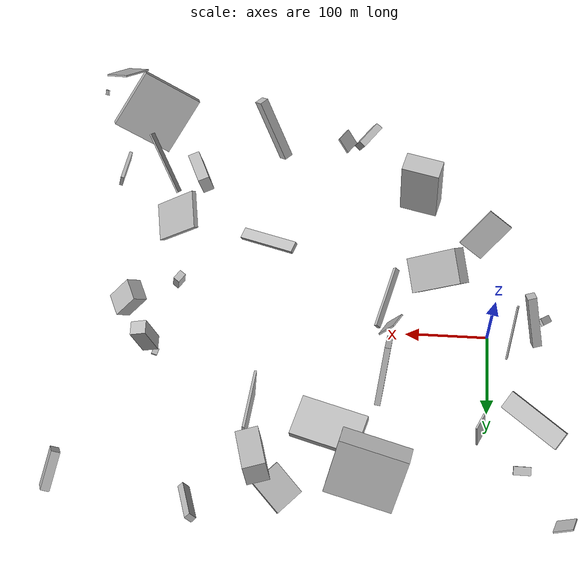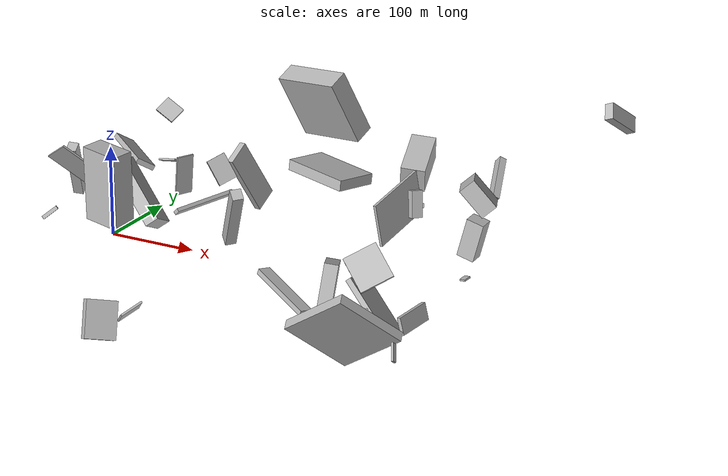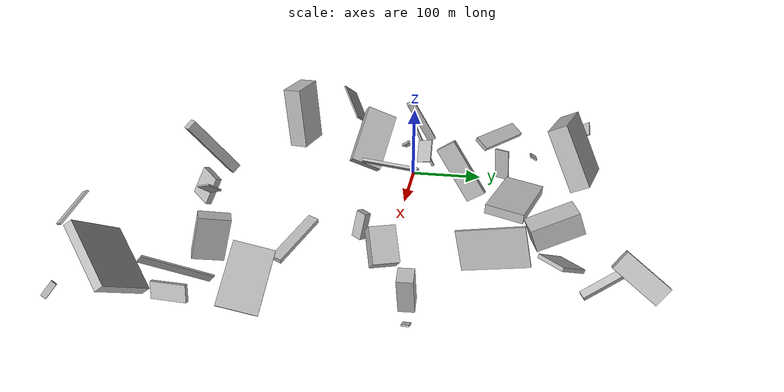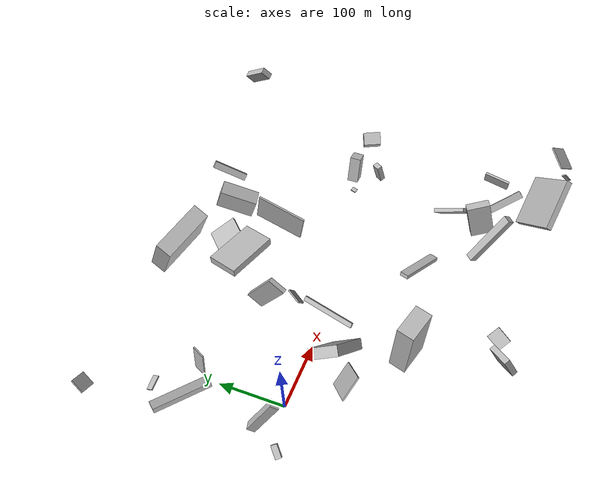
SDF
<sdf version="1.6">
 <world name="default">
  <scene>
   <sky><clouds><speed>12</speed></clouds></sky>
   <ambient>0.4 0.4 0.4 1</ambient>
   <background>0.7 0.7 0.7 1</background>
   <shadows>1</shadows>
  </scene>
  <gravity>0 0 -9.8066</gravity>
  <magnetic_field>6e-06 2.3e-05 -4.2e-05</magnetic_field>
  <physics default="0" name="default_physics" type="ode">
   <ode>
    <solver>
     <type>quick</type>
     <iters>10</iters>
     <sor>1.0</sor>
     <use_dynamic_moi_rescaling>0</use_dynamic_moi_rescaling>
    </solver>
    <constraints>
     <cfm>0</cfm>
     <erp>0.2</erp>
     <contact_max_correcting_vel>100</contact_max_correcting_vel>
     <contact_surface_layer>0.001</contact_surface_layer>
    </constraints>
   </ode>
   <max_step_size>0.004</max_step_size>
   <real_time_factor>1</real_time_factor>
   <real_time_update_rate>250</real_time_update_rate>
  </physics>
  <light name="sun" type="directional">
   <pose>0 0 10 0 0 0</pose>
   <diffuse>0.8 0.8 0.8 1</diffuse>
   <specular>0.2 0.2 0.2 1</specular>
   <attenuation>
    <range>1000</range>
    <constant>0.9</constant>
    <linear>0.01</linear>
    <quadratic>0.001</quadratic>
   </attenuation>
   <direction>-0.5 0.1 -0.9</direction>
  </light>
  <model name="building_1">
   <static>0</static>
   <pose>279.9965545909261 126.73202018139688 38.76321665959526 1.5321752018150498 -0.20810318214324763 1.4685759104585947</pose>
   <link name="link">
    <gravity>0</gravity>
    <pose>0 0 1.5 0 0 0</pose>
    <collision name="collision"><geometry><box><size>80 50 3</size></box></geometry></collision>
    <visual name="visual">
     <cast_shadows>0</cast_shadows>
     <geometry><box><size>80 50 3</size></box></geometry>
     <material>
      <script>
       <uri>model://HANNAS_wall/materials/scripts</uri>
       <uri>model://HANNAS_wall/materials/textures</uri>
       <name>vrc/HANNAS_wall</name>
      </script>
     </material>
    </visual>
   </link>
  </model>
  <model name="building_2">
   <static>0</static>
   <pose>93.61058459460833 -56.7361167412526 48.61423488849728 0.512007886250413 0.5815912216819143 -2.6064992408569356</pose>
   <link name="link">
    <gravity>0</gravity>
    <pose>0 0 40.0 0 0 0</pose>
    <collision name="collision"><geometry><box><size>15 42 80</size></box></geometry></collision>
    <visual name="visual">
     <cast_shadows>0</cast_shadows>
     <geometry><box><size>15 42 80</size></box></geometry>
     <material>
      <script>
       <uri>model://HANNAS_wall/materials/scripts</uri>
       <uri>model://HANNAS_wall/materials/textures</uri>
       <name>vrc/HANNAS_wall</name>
      </script>
     </material>
    </visual>
   </link>
  </model>
  <model name="building_3">
   <static>0</static>
   <pose>186.26479422411356 148.0589014043138 51.18227775472146 0.05181325330847027 0.07745645125323446 1.2743704321075382</pose>
   <link name="link">
    <gravity>0</gravity>
    <pose>0 0 6.0 0 0 0</pose>
    <collision name="collision"><geometry><box><size>48 80 12</size></box></geometry></collision>
    <visual name="visual">
     <cast_shadows>0</cast_shadows>
     <geometry><box><size>48 80 12</size></box></geometry>
     <material>
      <script>
       <uri>model://HANNAS_wall/materials/scripts</uri>
       <uri>model://HANNAS_wall/materials/textures</uri>
       <name>vrc/HANNAS_wall</name>
      </script>
     </material>
    </visual>
   </link>
  </model>
  <model name="building_4">
   <static>0</static>
   <pose>443.6855823263559 -278.1529136825402 136.59775008841018 0.9474559834551466 0.7805089044271074 1.8207618489288693</pose>
   <link name="link">
    <gravity>0</gravity>
    <pose>0 0 17.0 0 0 0</pose>
    <collision name="collision"><geometry><box><size>2 39 34</size></box></geometry></collision>
    <visual name="visual">
     <cast_shadows>0</cast_shadows>
     <geometry><box><size>2 39 34</size></box></geometry>
     <material>
      <script>
       <uri>model://HANNAS_wall/materials/scripts</uri>
       <uri>model://HANNAS_wall/materials/textures</uri>
       <name>vrc/HANNAS_wall</name>
      </script>
     </material>
    </visual>
   </link>
  </model>
  <model name="building_5">
   <static>0</static>
   <pose>-53.71746451042978 3.189412258950057 66.52480452832444 -1.7220571112228384 -1.0540468319826466 -1.1713802138509006</pose>
   <link name="link">
    <gravity>0</gravity>
    <pose>0 0 5.5 0 0 0</pose>
    <collision name="collision"><geometry><box><size>71 12 11</size></box></geometry></collision>
    <visual name="visual">
     <cast_shadows>0</cast_shadows>
     <geometry><box><size>71 12 11</size></box></geometry>
     <material>
      <script>
       <uri>model://HANNAS_wall/materials/scripts</uri>
       <uri>model://HANNAS_wall/materials/textures</uri>
       <name>vrc/HANNAS_wall</name>
      </script>
     </material>
    </visual>
   </link>
  </model>
  <model name="building_6">
   <static>0</static>
   <pose>402.2510653294307 44.72366829267591 9.770083499966987 0.13464949872219803 0.1503943121939559 -1.787754455920048</pose>
   <link name="link">
    <gravity>0</gravity>
    <pose>0 0 1.0 0 0 0</pose>
    <collision name="collision"><geometry><box><size>9 7 2</size></box></geometry></collision>
    <visual name="visual">
     <cast_shadows>0</cast_shadows>
     <geometry><box><size>9 7 2</size></box></geometry>
     <material>
      <script>
       <uri>model://HANNAS_wall/materials/scripts</uri>
       <uri>model://HANNAS_wall/materials/textures</uri>
       <name>vrc/HANNAS_wall</name>
      </script>
     </material>
    </visual>
   </link>
  </model>
  <model name="building_7">
   <static>0</static>
   <pose>454.08228412197656 -200.56257330067257 59.396637947524184 -1.191708869667795 1.354877417257151 0.2135165306851047</pose>
   <link name="link">
    <gravity>0</gravity>
    <pose>0 0 20.0 0 0 0</pose>
    <collision name="collision"><geometry><box><size>18 4 40</size></box></geometry></collision>
    <visual name="visual">
     <cast_shadows>0</cast_shadows>
     <geometry><box><size>18 4 40</size></box></geometry>
     <material>
      <script>
       <uri>model://HANNAS_wall/materials/scripts</uri>
       <uri>model://HANNAS_wall/materials/textures</uri>
       <name>vrc/HANNAS_wall</name>
      </script>
     </material>
    </visual>
   </link>
  </model>
  <model name="building_8">
   <static>0</static>
   <pose>124.96068337537739 67.42685827261576 56.256942372477866 -0.9842765875807007 -0.026073651422758085 -0.14525929873542798</pose>
   <link name="link">
    <gravity>0</gravity>
    <pose>0 0 13.5 0 0 0</pose>
    <collision name="collision"><geometry><box><size>7 80 27</size></box></geometry></collision>
    <visual name="visual">
     <cast_shadows>0</cast_shadows>
     <geometry><box><size>7 80 27</size></box></geometry>
     <material>
      <script>
       <uri>model://HANNAS_wall/materials/scripts</uri>
       <uri>model://HANNAS_wall/materials/textures</uri>
       <name>vrc/HANNAS_wall</name>
      </script>
     </material>
    </visual>
   </link>
  </model>
  <model name="building_9">
   <static>0</static>
   <pose>373.5326760712983 -9.279932538343441 105.30313980368851 -2.7279299987462227 -1.3470425803983885 2.127038603220841</pose>
   <link name="link">
    <gravity>0</gravity>
    <pose>0 0 4.0 0 0 0</pose>
    <collision name="collision"><geometry><box><size>28 12 8</size></box></geometry></collision>
    <visual name="visual">
     <cast_shadows>0</cast_shadows>
     <geometry><box><size>28 12 8</size></box></geometry>
     <material>
      <script>
       <uri>model://HANNAS_wall/materials/scripts</uri>
       <uri>model://HANNAS_wall/materials/textures</uri>
       <name>vrc/HANNAS_wall</name>
      </script>
     </material>
    </visual>
   </link>
  </model>
  <model name="building_10">
   <static>0</static>
   <pose>419.4109605552414 45.75241809012269 54.48975967565239 0.10436281535261606 -1.2978513568434706 -0.07442136768969607</pose>
   <link name="link">
    <gravity>0</gravity>
    <pose>0 0 9.5 0 0 0</pose>
    <collision name="collision"><geometry><box><size>43 17 19</size></box></geometry></collision>
    <visual name="visual">
     <cast_shadows>0</cast_shadows>
     <geometry><box><size>43 17 19</size></box></geometry>
     <material>
      <script>
       <uri>model://HANNAS_wall/materials/scripts</uri>
       <uri>model://HANNAS_wall/materials/textures</uri>
       <name>vrc/HANNAS_wall</name>
      </script>
     </material>
    </visual>
   </link>
  </model>
  <model name="building_11">
   <static>0</static>
   <pose>68.88288646436001 -136.95822552779202 119.63677328357181 1.6148628858684564 -0.061804922897520306 1.311763629929197</pose>
   <link name="link">
    <gravity>0</gravity>
    <pose>0 0 22.5 0 0 0</pose>
    <collision name="collision"><geometry><box><size>24 80 45</size></box></geometry></collision>
    <visual name="visual">
     <cast_shadows>0</cast_shadows>
     <geometry><box><size>24 80 45</size></box></geometry>
     <material>
      <script>
       <uri>model://HANNAS_wall/materials/scripts</uri>
       <uri>model://HANNAS_wall/materials/textures</uri>
       <name>vrc/HANNAS_wall</name>
      </script>
     </material>
    </visual>
   </link>
  </model>
  <model name="building_12">
   <static>0</static>
   <pose>491.0341855352604 -282.36747962850853 71.26693123988247 -0.47188309948223783 -0.8598849415063372 2.062187277139318</pose>
   <link name="link">
    <gravity>0</gravity>
    <pose>0 0 3.0 0 0 0</pose>
    <collision name="collision"><geometry><box><size>18 2 6</size></box></geometry></collision>
    <visual name="visual">
     <cast_shadows>0</cast_shadows>
     <geometry><box><size>18 2 6</size></box></geometry>
     <material>
      <script>
       <uri>model://HANNAS_wall/materials/scripts</uri>
       <uri>model://HANNAS_wall/materials/textures</uri>
       <name>vrc/HANNAS_wall</name>
      </script>
     </material>
    </visual>
   </link>
  </model>
  <model name="building_13">
   <static>0</static>
   <pose>390.9009227943308 -164.96513085420622 36.60827294319318 0.7638537239144003 -0.817591601877111 1.2045286012615166</pose>
   <link name="link">
    <gravity>0</gravity>
    <pose>0 0 40.0 0 0 0</pose>
    <collision name="collision"><geometry><box><size>12 2 80</size></box></geometry></collision>
    <visual name="visual">
     <cast_shadows>0</cast_shadows>
     <geometry><box><size>12 2 80</size></box></geometry>
     <material>
      <script>
       <uri>model://HANNAS_wall/materials/scripts</uri>
       <uri>model://HANNAS_wall/materials/textures</uri>
       <name>vrc/HANNAS_wall</name>
      </script>
     </material>
    </visual>
   </link>
  </model>
  <model name="building_14">
   <static>0</static>
   <pose>436.6933379562506 28.034990045200637 99.36363914801026 0.7051737758362245 -0.039598995915817614 -1.168949500733004</pose>
   <link name="link">
    <gravity>0</gravity>
    <pose>0 0 18.0 0 0 0</pose>
    <collision name="collision"><geometry><box><size>26 19 36</size></box></geometry></collision>
    <visual name="visual">
     <cast_shadows>0</cast_shadows>
     <geometry><box><size>26 19 36</size></box></geometry>
     <material>
      <script>
       <uri>model://HANNAS_wall/materials/scripts</uri>
       <uri>model://HANNAS_wall/materials/textures</uri>
       <name>vrc/HANNAS_wall</name>
      </script>
     </material>
    </visual>
   </link>
  </model>
  <model name="building_15">
   <static>0</static>
   <pose>127.08832946732282 -16.550651143856452 63.86607322262183 -0.0018465878911678136 -0.812965451798321 -0.25560962270918614</pose>
   <link name="link">
    <gravity>0</gravity>
    <pose>0 0 2.0 0 0 0</pose>
    <collision name="collision"><geometry><box><size>7 80 4</size></box></geometry></collision>
    <visual name="visual">
     <cast_shadows>0</cast_shadows>
     <geometry><box><size>7 80 4</size></box></geometry>
     <material>
      <script>
       <uri>model://HANNAS_wall/materials/scripts</uri>
       <uri>model://HANNAS_wall/materials/textures</uri>
       <name>vrc/HANNAS_wall</name>
      </script>
     </material>
    </visual>
   </link>
  </model>
  <model name="building_16">
   <static>0</static>
   <pose>391.15193919587904 -127.72223989500003 41.42521735017289 2.2694257723757385 -0.2668732989803122 -1.4377535380249924</pose>
   <link name="link">
    <gravity>0</gravity>
    <pose>0 0 3.0 0 0 0</pose>
    <collision name="collision"><geometry><box><size>46 71 6</size></box></geometry></collision>
    <visual name="visual">
     <cast_shadows>0</cast_shadows>
     <geometry><box><size>46 71 6</size></box></geometry>
     <material>
      <script>
       <uri>model://HANNAS_wall/materials/scripts</uri>
       <uri>model://HANNAS_wall/materials/textures</uri>
       <name>vrc/HANNAS_wall</name>
      </script>
     </material>
    </visual>
   </link>
  </model>
  <model name="building_17">
   <static>0</static>
   <pose>255.94511960830388 -182.53683003113113 104.84841553049048 0.08281668133374835 0.6367830451465198 -0.7278767702187471</pose>
   <link name="link">
    <gravity>0</gravity>
    <pose>0 0 40.0 0 0 0</pose>
    <collision name="collision"><geometry><box><size>12 11 80</size></box></geometry></collision>
    <visual name="visual">
     <cast_shadows>0</cast_shadows>
     <geometry><box><size>12 11 80</size></box></geometry>
     <material>
      <script>
       <uri>model://HANNAS_wall/materials/scripts</uri>
       <uri>model://HANNAS_wall/materials/textures</uri>
       <name>vrc/HANNAS_wall</name>
      </script>
     </material>
    </visual>
   </link>
  </model>
  <model name="building_18">
   <static>0</static>
   <pose>10.977521816427478 130.77821261139036 27.966545588820296 -0.0028952603326046237 -1.460231644887205 -0.4490563015666765</pose>
   <link name="link">
    <gravity>0</gravity>
    <pose>0 0 1.0 0 0 0</pose>
    <collision name="collision"><geometry><box><size>46 21 2</size></box></geometry></collision>
    <visual name="visual">
     <cast_shadows>0</cast_shadows>
     <geometry><box><size>46 21 2</size></box></geometry>
     <material>
      <script>
       <uri>model://HANNAS_wall/materials/scripts</uri>
       <uri>model://HANNAS_wall/materials/textures</uri>
       <name>vrc/HANNAS_wall</name>
      </script>
     </material>
    </visual>
   </link>
  </model>
  <model name="building_19">
   <static>0</static>
   <pose>-85.65427045189716 242.96729056591244 47.781922080766094 0.763025589973828 0.7635207993995523 2.1569425486426796</pose>
   <link name="link">
    <gravity>0</gravity>
    <pose>0 0 10.5 0 0 0</pose>
    <collision name="collision"><geometry><box><size>2 24 21</size></box></geometry></collision>
    <visual name="visual">
     <cast_shadows>0</cast_shadows>
     <geometry><box><size>2 24 21</size></box></geometry>
     <material>
      <script>
       <uri>model://HANNAS_wall/materials/scripts</uri>
       <uri>model://HANNAS_wall/materials/textures</uri>
       <name>vrc/HANNAS_wall</name>
      </script>
     </material>
    </visual>
   </link>
  </model>
  <model name="building_20">
   <static>0</static>
   <pose>-69.89709816651416 -18.974588899084704 20.247369634608283 2.7276240108382575 -0.5873906654357832 0.7752441763249732</pose>
   <link name="link">
    <gravity>0</gravity>
    <pose>0 0 2.0 0 0 0</pose>
    <collision name="collision"><geometry><box><size>19 9 4</size></box></geometry></collision>
    <visual name="visual">
     <cast_shadows>0</cast_shadows>
     <geometry><box><size>19 9 4</size></box></geometry>
     <material>
      <script>
       <uri>model://HANNAS_wall/materials/scripts</uri>
       <uri>model://HANNAS_wall/materials/textures</uri>
       <name>vrc/HANNAS_wall</name>
      </script>
     </material>
    </visual>
   </link>
  </model>
  <model name="building_21">
   <static>0</static>
   <pose>349.4626373378419 220.87054631016022 30.129422191257003 -0.7745210166073234 -0.7772442952864528 -0.32596597764542484</pose>
   <link name="link">
    <gravity>0</gravity>
    <pose>0 0 28.0 0 0 0</pose>
    <collision name="collision"><geometry><box><size>11 8 56</size></box></geometry></collision>
    <visual name="visual">
     <cast_shadows>0</cast_shadows>
     <geometry><box><size>11 8 56</size></box></geometry>
     <material>
      <script>
       <uri>model://HANNAS_wall/materials/scripts</uri>
       <uri>model://HANNAS_wall/materials/textures</uri>
       <name>vrc/HANNAS_wall</name>
      </script>
     </material>
    </visual>
   </link>
  </model>
  <model name="building_22">
   <static>0</static>
   <pose>478.895250116193 246.37848766662293 136.05487959066522 1.007225399579986 -0.8521827748040236 1.9725456896593245</pose>
   <link name="link">
    <gravity>0</gravity>
    <pose>0 0 5.0 0 0 0</pose>
    <collision name="collision"><geometry><box><size>18 45 10</size></box></geometry></collision>
    <visual name="visual">
     <cast_shadows>0</cast_shadows>
     <geometry><box><size>18 45 10</size></box></geometry>
     <material>
      <script>
       <uri>model://HANNAS_wall/materials/scripts</uri>
       <uri>model://HANNAS_wall/materials/textures</uri>
       <name>vrc/HANNAS_wall</name>
      </script>
     </material>
    </visual>
   </link>
  </model>
  <model name="building_23">
   <static>0</static>
   <pose>177.01090736113284 -260.57777547058976 34.18243755560364 -1.1011351892904522 -0.6562795795427065 -0.7815244400320847</pose>
   <link name="link">
    <gravity>0</gravity>
    <pose>0 0 12.5 0 0 0</pose>
    <collision name="collision"><geometry><box><size>21 2 25</size></box></geometry></collision>
    <visual name="visual">
     <cast_shadows>0</cast_shadows>
     <geometry><box><size>21 2 25</size></box></geometry>
     <material>
      <script>
       <uri>model://HANNAS_wall/materials/scripts</uri>
       <uri>model://HANNAS_wall/materials/textures</uri>
       <name>vrc/HANNAS_wall</name>
      </script>
     </material>
    </visual>
   </link>
  </model>
  <model name="building_24">
   <static>0</static>
   <pose>276.79943856207916 -100.74183095185442 25.045738310340646 1.1333867059492453 -1.2337435819056488 0.03777290500902626</pose>
   <link name="link">
    <gravity>0</gravity>
    <pose>0 0 7.0 0 0 0</pose>
    <collision name="collision"><geometry><box><size>6 75 14</size></box></geometry></collision>
    <visual name="visual">
     <cast_shadows>0</cast_shadows>
     <geometry><box><size>6 75 14</size></box></geometry>
     <material>
      <script>
       <uri>model://HANNAS_wall/materials/scripts</uri>
       <uri>model://HANNAS_wall/materials/textures</uri>
       <name>vrc/HANNAS_wall</name>
      </script>
     </material>
    </visual>
   </link>
  </model>
  <model name="building_25">
   <static>0</static>
   <pose>152.84755585400424 -261.72305735130277 27.901492914513884 0.5340187326146636 -1.1188642137477476 1.9469017781723112</pose>
   <link name="link">
    <gravity>0</gravity>
    <pose>0 0 4.5 0 0 0</pose>
    <collision name="collision"><geometry><box><size>39 33 9</size></box></geometry></collision>
    <visual name="visual">
     <cast_shadows>0</cast_shadows>
     <geometry><box><size>39 33 9</size></box></geometry>
     <material>
      <script>
       <uri>model://HANNAS_wall/materials/scripts</uri>
       <uri>model://HANNAS_wall/materials/textures</uri>
       <name>vrc/HANNAS_wall</name>
      </script>
     </material>
    </visual>
   </link>
  </model>
  <model name="building_26">
   <static>0</static>
   <pose>392.4208454372971 -254.57878617798997 50.40473921677146 -0.8069724704325452 -0.6643378107903247 -2.2687335647819524</pose>
   <link name="link">
    <gravity>0</gravity>
    <pose>0 0 39.5 0 0 0</pose>
    <collision name="collision"><geometry><box><size>77 10 79</size></box></geometry></collision>
    <visual name="visual">
     <cast_shadows>0</cast_shadows>
     <geometry><box><size>77 10 79</size></box></geometry>
     <material>
      <script>
       <uri>model://HANNAS_wall/materials/scripts</uri>
       <uri>model://HANNAS_wall/materials/textures</uri>
       <name>vrc/HANNAS_wall</name>
      </script>
     </material>
    </visual>
   </link>
  </model>
  <model name="building_27">
   <static>0</static>
   <pose>258.57021385900833 193.52756820857553 14.005290342082233 3.0950603598144864 1.1557268858040997 -0.8010640207355373</pose>
   <link name="link">
    <gravity>0</gravity>
    <pose>0 0 22.5 0 0 0</pose>
    <collision name="collision"><geometry><box><size>5 38 45</size></box></geometry></collision>
    <visual name="visual">
     <cast_shadows>0</cast_shadows>
     <geometry><box><size>5 38 45</size></box></geometry>
     <material>
      <script>
       <uri>model://HANNAS_wall/materials/scripts</uri>
       <uri>model://HANNAS_wall/materials/textures</uri>
       <name>vrc/HANNAS_wall</name>
      </script>
     </material>
    </visual>
   </link>
  </model>
  <model name="building_28">
   <static>0</static>
   <pose>354.1780987347226 -159.01241988515005 66.95533062616117 0.5977388226420572 -1.298482512121657 1.395786422044545</pose>
   <link name="link">
    <gravity>0</gravity>
    <pose>0 0 17.5 0 0 0</pose>
    <collision name="collision"><geometry><box><size>54 14 35</size></box></geometry></collision>
    <visual name="visual">
     <cast_shadows>0</cast_shadows>
     <geometry><box><size>54 14 35</size></box></geometry>
     <material>
      <script>
       <uri>model://HANNAS_wall/materials/scripts</uri>
       <uri>model://HANNAS_wall/materials/textures</uri>
       <name>vrc/HANNAS_wall</name>
      </script>
     </material>
    </visual>
   </link>
  </model>
  <model name="building_29">
   <static>0</static>
   <pose>-44.285978653682356 131.79005891710034 41.52371072605567 1.0247240705545357 0.05006232671962525 -0.6950623660060979</pose>
   <link name="link">
    <gravity>0</gravity>
    <pose>0 0 11.5 0 0 0</pose>
    <collision name="collision"><geometry><box><size>80 6 23</size></box></geometry></collision>
    <visual name="visual">
     <cast_shadows>0</cast_shadows>
     <geometry><box><size>80 6 23</size></box></geometry>
     <material>
      <script>
       <uri>model://HANNAS_wall/materials/scripts</uri>
       <uri>model://HANNAS_wall/materials/textures</uri>
       <name>vrc/HANNAS_wall</name>
      </script>
     </material>
    </visual>
   </link>
  </model>
  <model name="building_30">
   <static>0</static>
   <pose>29.489630612476894 -71.82869838051778 90.89743886656682 0.7149609503311832 -0.5723596073329003 -0.3747335991441545</pose>
   <link name="link">
    <gravity>0</gravity>
    <pose>0 0 27.0 0 0 0</pose>
    <collision name="collision"><geometry><box><size>34 2 54</size></box></geometry></collision>
    <visual name="visual">
     <cast_shadows>0</cast_shadows>
     <geometry><box><size>34 2 54</size></box></geometry>
     <material>
      <script>
       <uri>model://HANNAS_wall/materials/scripts</uri>
       <uri>model://HANNAS_wall/materials/textures</uri>
       <name>vrc/HANNAS_wall</name>
      </script>
     </material>
    </visual>
   </link>
  </model>
  <model name="building_31">
   <static>0</static>
   <pose>-25.407395970236966 9.402845015143782 39.20966752513828 1.4545363244327962 0.4394228202691896 -1.9954763266712157</pose>
   <link name="link">
    <gravity>0</gravity>
    <pose>0 0 1.0 0 0 0</pose>
    <collision name="collision"><geometry><box><size>4 80 2</size></box></geometry></collision>
    <visual name="visual">
     <cast_shadows>0</cast_shadows>
     <geometry><box><size>4 80 2</size></box></geometry>
     <material>
      <script>
       <uri>model://HANNAS_wall/materials/scripts</uri>
       <uri>model://HANNAS_wall/materials/textures</uri>
       <name>vrc/HANNAS_wall</name>
      </script>
     </material>
    </visual>
   </link>
  </model>
  <model name="building_32">
   <static>0</static>
   <pose>284.17263643384524 196.41057086184338 66.86889337459904 1.332534020564362 -1.1929894781982464 -1.0695921035599247</pose>
   <link name="link">
    <gravity>0</gravity>
    <pose>0 0 13.5 0 0 0</pose>
    <collision name="collision"><geometry><box><size>29 57 27</size></box></geometry></collision>
    <visual name="visual">
     <cast_shadows>0</cast_shadows>
     <geometry><box><size>29 57 27</size></box></geometry>
     <material>
      <script>
       <uri>model://HANNAS_wall/materials/scripts</uri>
       <uri>model://HANNAS_wall/materials/textures</uri>
       <name>vrc/HANNAS_wall</name>
      </script>
     </material>
    </visual>
   </link>
  </model>
  <model name="building_33">
   <static>0</static>
   <pose>-49.33417201319112 177.38590227555918 21.196122347538648 -1.2990957081610492 1.0954133893807239 -1.2953219043192647</pose>
   <link name="link">
    <gravity>0</gravity>
    <pose>0 0 10.5 0 0 0</pose>
    <collision name="collision"><geometry><box><size>2 10 21</size></box></geometry></collision>
    <visual name="visual">
     <cast_shadows>0</cast_shadows>
     <geometry><box><size>2 10 21</size></box></geometry>
     <material>
      <script>
       <uri>model://HANNAS_wall/materials/scripts</uri>
       <uri>model://HANNAS_wall/materials/textures</uri>
       <name>vrc/HANNAS_wall</name>
      </script>
     </material>
    </visual>
   </link>
  </model>
  <model name="building_34">
   <static>0</static>
   <pose>119.99460341507302 29.678326440505163 85.90330263590529 1.079647918650945 -0.29804614886843955 1.0653040085903285</pose>
   <link name="link">
    <gravity>0</gravity>
    <pose>0 0 1.0 0 0 0</pose>
    <collision name="collision"><geometry><box><size>22 29 2</size></box></geometry></collision>
    <visual name="visual">
     <cast_shadows>0</cast_shadows>
     <geometry><box><size>22 29 2</size></box></geometry>
     <material>
      <script>
       <uri>model://HANNAS_wall/materials/scripts</uri>
       <uri>model://HANNAS_wall/materials/textures</uri>
       <name>vrc/HANNAS_wall</name>
      </script>
     </material>
    </visual>
   </link>
  </model>
  <model name="building_35">
   <static>0</static>
   <pose>148.9318419252769 234.58297306299644 71.96453121997695 0.46313213414374454 -0.1008248663124379 -0.24036322362383408</pose>
   <link name="link">
    <gravity>0</gravity>
    <pose>0 0 40.0 0 0 0</pose>
    <collision name="collision"><geometry><box><size>80 24 80</size></box></geometry></collision>
    <visual name="visual">
     <cast_shadows>0</cast_shadows>
     <geometry><box><size>80 24 80</size></box></geometry>
     <material>
      <script>
       <uri>model://HANNAS_wall/materials/scripts</uri>
       <uri>model://HANNAS_wall/materials/textures</uri>
       <name>vrc/HANNAS_wall</name>
      </script>
     </material>
    </visual>
   </link>
  </model>
 </world>
</sdf>
